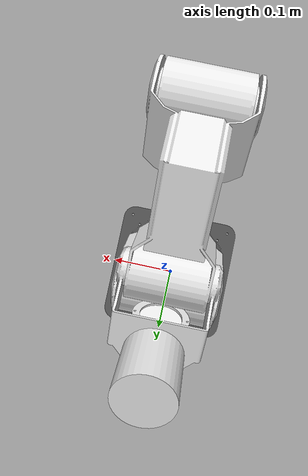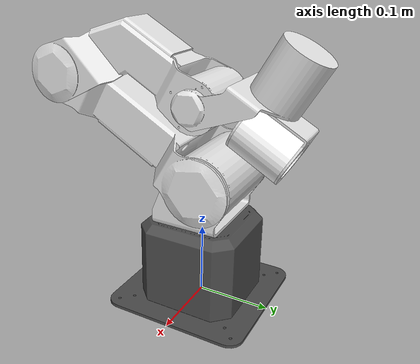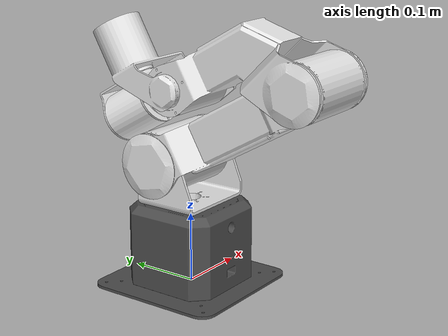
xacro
<?xml version="1.0"?>
<robot xmlns:xacro="http://www.ros.org/wiki/xacro" name="if_arm_lite">
    <xacro:arg name="initial_positions_file" default="initial_positions.yaml" />

    <!-- Import if_arm_lite urdf file -->
    <xacro:include filename="$(find if_arm_lite)/urdf/if_arm_lite.urdf" />

    <!-- Import control_xacro -->
    <xacro:include filename="if_arm_lite.ros2_control.xacro" />

    <xacro:if_arm_lite_ros2_control name="FakeSystem" initial_positions_file="$(arg initial_positions_file)"/>

</robot>

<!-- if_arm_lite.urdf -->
<robot
  name="if_arm_lite">
  <link
    name="base_link">
    <inertial>
      <origin
        xyz="1.84824077084014E-09 0.000211541281536506 0.0532296300077543"
        rpy="0 0 0" />
      <mass
        value="2.38849935464757" />
      <inertia
        ixx="0.00651750797540401"
        ixy="2.39368314572384E-10"
        ixz="-1.47345775853904E-10"
        iyy="0.00654904298187045"
        iyz="1.87546596302652E-06"
        izz="0.00948632530264008" />
    </inertial>
    <visual>
      <origin
        xyz="0 0 0"
        rpy="0 0 0" />
      <geometry>
        <mesh
          filename="package://if_arm_lite/meshes/base_link.STL" />
      </geometry>
      <material
        name="">
        <color
          rgba="0.298039215686275 0.298039215686275 0.298039215686275 1" />
      </material>
    </visual>
    <collision>
      <origin
        xyz="0 0 0"
        rpy="0 0 0" />
      <geometry>
        <mesh
          filename="package://if_arm_lite/meshes/base_link.STL" />
      </geometry>
    </collision>
  </link>
  <link
    name="link1">
    <inertial>
      <origin
        xyz="4.62130863252275E-18 0.0156844507528627 0.0456221491202041"
        rpy="0 0 0" />
      <mass
        value="0.933149430168335" />
      <inertia
        ixx="0.00104952511106191"
        ixy="-5.93353691391485E-20"
        ixz="-1.27975732868334E-19"
        iyy="0.00168075344251834"
        iyz="-3.24983681888483E-05"
        izz="0.00169644886128329" />
    </inertial>
    <visual>
      <origin
        xyz="0 0 0"
        rpy="0 0 0" />
      <geometry>
        <mesh
          filename="package://if_arm_lite/meshes/link1.STL" />
      </geometry>
      <material
        name="">
        <color
          rgba="0.894117647058823 0.894117647058823 0.894117647058823 1" />
      </material>
    </visual>
    <collision>
      <origin
        xyz="0 0 0"
        rpy="0 0 0" />
      <geometry>
        <mesh
          filename="package://if_arm_lite/meshes/link1.STL" />
      </geometry>
    </collision>
  </link>
  <joint
    name="joint1"
    type="revolute">
    <origin
      xyz="0 0 0.125"
      rpy="0 0 0" />
    <parent
      link="base_link" />
    <child
      link="link1" />
    <axis
      xyz="0 0 1" />
    <limit
      lower="-3.161592653589793"
      upper="2.637993877991494"
      effort="100"
      velocity="1.047197551196598" />
  </joint>
  <link
    name="link2">
    <inertial>
      <origin
        xyz="-4.61419147043162E-08 -0.128534923450399 0.0720247177223146"
        rpy="0 0 0" />
      <mass
        value="1.54551028823085" />
      <inertia
        ixx="0.00460540946359347"
        ixy="3.17553563878226E-09"
        ixz="-2.88288621661547E-09"
        iyy="0.00283717004815554"
        iyz="0.00141070193426576"
        izz="0.00457809769437578" />
    </inertial>
    <visual>
      <origin
        xyz="0 0 0"
        rpy="0 0 0" />
      <geometry>
        <mesh
          filename="package://if_arm_lite/meshes/link2.STL" />
      </geometry>
      <material
        name="">
        <color
          rgba="0.894117647058823 0.894117647058823 0.894117647058823 1" />
      </material>
    </visual>
    <collision>
      <origin
        xyz="0 0 0"
        rpy="0 0 0" />
      <geometry>
        <mesh
          filename="package://if_arm_lite/meshes/link2.STL" />
      </geometry>
    </collision>
  </link>
  <joint
    name="joint2"
    type="revolute">
    <origin
      xyz="0 0.02 0.056"
      rpy="0 0 0" />
    <parent
      link="link1" />
    <child
      link="link2" />
    <axis
      xyz="1 0 0" />
    <limit
      lower="-2.637993877991494"
      upper="0.020000000000000"
      effort="100"
      velocity="1.047197551196598" />
  </joint>
  <link
    name="link3">
    <inertial>
      <origin
        xyz="5.55672937164869E-09 0.120071629995531 0.00534094980014044"
        rpy="0 0 0" />
      <mass
        value="1.06394249157461" />
      <inertia
        ixx="0.00252936419504287"
        ixy="1.03269761197127E-10"
        ixz="1.09058191056525E-10"
        iyy="0.00140031955002125"
        iyz="0.000162071876171997"
        izz="0.00282634894101918" />
    </inertial>
    <visual>
      <origin
        xyz="0 0 0"
        rpy="0 0 0" />
      <geometry>
        <mesh
          filename="package://if_arm_lite/meshes/link3.STL" />
      </geometry>
      <material
        name="">
        <color
          rgba="0.894117647058823 0.894117647058823 0.894117647058823 1" />
      </material>
    </visual>
    <collision>
      <origin
        xyz="0 0 0"
        rpy="0 0 0" />
      <geometry>
        <mesh
          filename="package://if_arm_lite/meshes/link3.STL" />
      </geometry>
    </collision>
  </link>
  <joint
    name="joint3"
    type="revolute">
    <origin
      xyz="0 -0.21651 0.125"
      rpy="0 0 0" />
    <parent
      link="link2" />
    <child
      link="link3" />
    <axis
      xyz="1 0 0" />
    <limit
      lower="-0.020000000000000"
      upper="3.161592653589793"
      effort="100"
      velocity="1.047197551196598" />
  </joint>
  <link
    name="link4">
    <inertial>
      <origin
        xyz="7.93253236862919E-17 0.0792676987208508 0.028456071423967"
        rpy="0 0 0" />
      <mass
        value="0.434748343729053" />
      <inertia
        ixx="0.000355829485695714"
        ixy="4.6698346626299E-19"
        ixz="-5.26039313035956E-19"
        iyy="0.000423457123888174"
        iyz="-3.09645736814595E-05"
        izz="0.000503682209029024" />
    </inertial>
    <visual>
      <origin
        xyz="0 0 0"
        rpy="0 0 0" />
      <geometry>
        <mesh
          filename="package://if_arm_lite/meshes/link4.STL" />
      </geometry>
      <material
        name="">
        <color
          rgba="0.894117647058823 0.894117647058823 0.894117647058823 1" />
      </material>
    </visual>
    <collision>
      <origin
        xyz="0 0 0"
        rpy="0 0 0" />
      <geometry>
        <mesh
          filename="package://if_arm_lite/meshes/link4.STL" />
      </geometry>
    </collision>
  </link>
  <joint
    name="joint4"
    type="revolute">
    <origin
      xyz="0 0.20021 -0.023218"
      rpy="0 0 0" />
    <parent
      link="link3" />
    <child
      link="link4" />
    <axis
      xyz="1 0 0" />
    <limit
      lower="-1.590796326794897"
      upper="1.416263401595464"
      effort="100"
      velocity="1.047197551196598" />
  </joint>
  <link
    name="link5">
    <inertial>
      <origin
        xyz="1.6506863981244E-16 -0.0136296961440297 -0.058384862808969"
        rpy="0 0 0" />
      <mass
        value="0.0818423984417808" />
      <inertia
        ixx="0.00010074741025016"
        ixy="-1.24712309396742E-19"
        ixz="8.51468304424381E-20"
        iyy="6.70718590223407E-05"
        iyz="1.11155336043932E-05"
        izz="8.31280915214178E-05" />
    </inertial>
    <visual>
      <origin
        xyz="0 0 0"
        rpy="0 0 0" />
      <geometry>
        <mesh
          filename="package://if_arm_lite/meshes/link5.STL" />
      </geometry>
      <material
        name="">
        <color
          rgba="0.894117647058823 0.894117647058823 0.894117647058823 1" />
      </material>
    </visual>
    <collision>
      <origin
        xyz="0 0 0"
        rpy="0 0 0" />
      <geometry>
        <mesh
          filename="package://if_arm_lite/meshes/link5.STL" />
      </geometry>
    </collision>
  </link>
  <joint
    name="joint5"
    type="revolute">
    <origin
      xyz="0 0.10779 0.041692"
      rpy="0 0 0" />
    <parent
      link="link4" />
    <child
      link="link5" />
    <axis
      xyz="0 0.5 0.86603" />
    <limit
      lower="-0.805398163397448"
      upper="0.805398163397448"
      effort="100"
      velocity="1.047197551196598" />
  </joint>
  <link
    name="link6">
    <inertial>
      <origin
        xyz="-1.16098242560076E-17 -2.77555756156289E-17 -5.55111512312578E-17"
        rpy="0 0 0" />
      <mass
        value="0.27708847204662" />
      <inertia
        ixx="0.000204560564488417"
        ixy="-1.23910316012184E-19"
        ixz="5.95032315140653E-20"
        iyy="0.00017842765796852"
        iyz="1.50878406139696E-05"
        izz="0.000195849595648452" />
    </inertial>
    <visual>
      <origin
        xyz="0 0 0"
        rpy="0 0 0" />
      <geometry>
        <mesh
          filename="package://if_arm_lite/meshes/link6.STL" />
      </geometry>
      <material
        name="">
        <color
          rgba="1 1 1 1" />
      </material>
    </visual>
    <collision>
      <origin
        xyz="0 0 0"
        rpy="0 0 0" />
      <geometry>
        <mesh
          filename="package://if_arm_lite/meshes/link6.STL" />
      </geometry>
    </collision>
  </link>
  <joint
    name="joint6"
    type="revolute">
    <origin
      xyz="0 -0.023447 -0.084612"
      rpy="0 0 0" />
    <parent
      link="link5" />
    <child
      link="link6" />
    <axis
      xyz="0 0.86603 -0.5" />
    <limit
      lower="-3.160000000000000"
      upper="3.160000000000000"
      effort="100"
      velocity="1.047197551196598" />
  </joint>
</robot>
